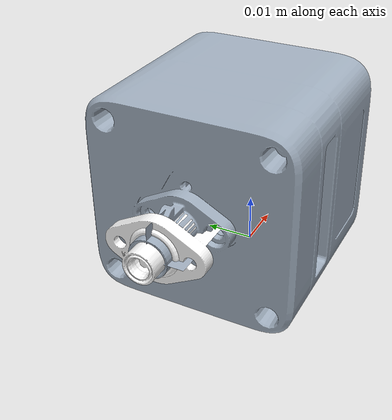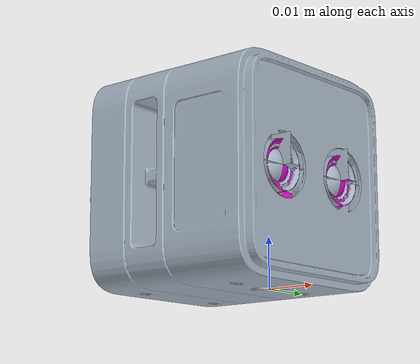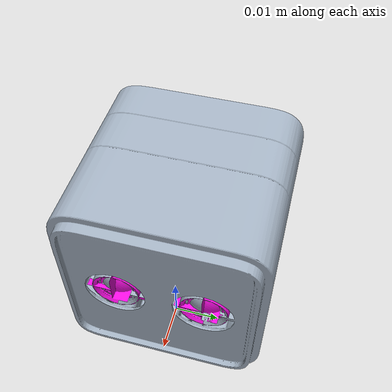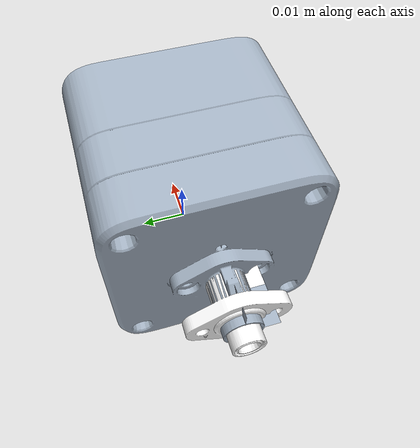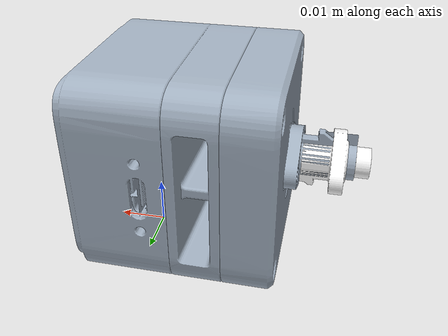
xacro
<?xml version="1.0" encoding="utf-8"?>
<robot xmlns:xacro="http://ros.org/wiki/xacro" name="gemini_305_g">
  <xacro:property name="mesh_path" value="package://orbbec_camera/meshes/gemini305_g/" />
  <link
    name="camera_link" />
  <joint
    name="camera_link"
    type="fixed">
    <origin
      xyz="0.008050000000001 0.00900395097915 0.0209939609855011"
      rpy="0 0 0" />
    <parent
      link="camera_bottom_screw" />
    <child
      link="camera_link" />
    <axis
      xyz="0 0 0" />
  </joint>
  <link
    name="camera_left_color_optical_frame" />
  <joint
    name="camera_left_color_optical_frame"
    type="fixed">
    <origin
      xyz="0 0 0"
      rpy="-1.5707963267949 0 -1.5707963267949" />
    <parent
      link="camera_left_color_frame" />
    <child
      link="camera_left_color_optical_frame" />
    <axis
      xyz="0 0 0" />
  </joint>
  <link
    name="camera_right_color_optical_frame" />
  <joint
    name="camera_right_color_optical_frame"
    type="fixed">
    <origin
      xyz="0 0 0"
      rpy="-1.5707963267949 0 -1.5707963267949" />
    <parent
      link="camera_right_color_frame" />
    <child
      link="camera_right_color_optical_frame" />
    <axis
      xyz="0 0 0" />
  </joint>
  <link
    name="camera_bottom_screw">
    <inertial>
      <origin
        xyz="9.11600953309166E-05 -0.00320635295652284 -0.020524426961246"
        rpy="0 0 0" />
      <mass
        value="0.0214423582709099" />
      <inertia
        ixx="4.83339010606525E-06"
        ixy="-3.72329051071151E-09"
        ixz="2.51447927275988E-08"
        iyy="8.20575253145867E-06"
        iyz="1.19581716252661E-08"
        izz="4.32451827833792E-06" />
    </inertial>
    <visual>
      <origin
        xyz="0 0 0"
        rpy="3.141592653589793 0 1.570796326794897" />
      <geometry>
        <mesh
          filename="${mesh_path}base_link.STL" />
      </geometry>
      <material
        name="">
        <color
          rgba="0.631372549019608 0.686274509803922 0.749019607843137 1" />
      </material>
    </visual>
    <collision>
      <origin
        xyz="0 0 0"
        rpy="3.141592653589793 0 1.570796326794897" />
      <geometry>
        <mesh
          filename="${mesh_path}base_link.STL" />
      </geometry>
    </collision>
    <visual>
      <origin
        xyz="-0.033409999999996 0 0.020993960985498"
        rpy="0 0 1.570796326794897" />
      <geometry>
        <mesh
          filename="${mesh_path}FAKRA.STL" />
      </geometry>
      <material
        name="">
        <color
          rgba="1 1 1 1" />
      </material>
    </visual>
    <collision>
      <origin
        xyz="-0.033409999999996 0 0.020993960985498"
        rpy="0 0 1.570796326794897" />
      <geometry>
        <mesh
          filename="${mesh_path}FAKRA.STL" />
      </geometry>
    </collision>
  </link>
  <link
    name="camera_right_color_frame">
    <inertial>
      <origin
        xyz="-1.1760228169691E-06 -0.0034693462830589 0.000376234001467315"
        rpy="0 0 0" />
      <mass
        value="0.000735468334566907" />
      <inertia
        ixx="7.92202560415907E-09"
        ixy="-1.95146774675994E-12"
        ixz="-9.3353249049419E-12"
        iyy="9.93176003014812E-09"
        iyz="-6.12381828511411E-12"
        izz="8.02751620920214E-09" />
    </inertial>
    <visual>
      <origin
        xyz="0 0 0"
        rpy="3.141592653589793 0 1.570796326794897" />
      <geometry>
        <mesh
          filename="${mesh_path}RGB_R.STL" />
      </geometry>
      <material
        name="">
        <color
          rgba="0.956862745098039 0.0470588235294118 0.874509803921569 1" />
      </material>
    </visual>
    <collision>
      <origin
        xyz="0 0 0"
        rpy="3.141592653589793 0 1.570796326794897" />
      <geometry>
        <mesh
          filename="${mesh_path}RGB_R.STL" />
      </geometry>
    </collision>
  </link>
  <joint
    name="camera_right_color_frame"
    type="fixed">
    <origin
      xyz="0 -0.018 0"
      rpy="0 0 0" />
    <parent
      link="camera_left_color_frame" />
    <child
      link="camera_right_color_frame" />
    <axis
      xyz="0 0 0" />
  </joint>
  <link
    name="camera_left_color_frame">
    <inertial>
      <origin
        xyz="-1.17602281778789E-06 -0.00346934628305837 0.000376234001468578"
        rpy="0 0 0" />
      <mass
        value="0.000735468334566977" />
      <inertia
        ixx="7.92202562203234E-09"
        ixy="-1.95146773316258E-12"
        ixz="-9.33532489896877E-12"
        iyy="9.9317599983348E-09"
        iyz="-6.12381825718017E-12"
        izz="8.0275161952487E-09" />
    </inertial>
    <visual>
      <origin
        xyz="0 0 0"
        rpy="3.141592653589793 0 1.570796326794897" />
      <geometry>
        <mesh
          filename="${mesh_path}RGB_L.STL" />
      </geometry>
      <material
        name="">
        <color
          rgba="0.956862745098039 0.0470588235294118 0.874509803921569 1" />
      </material>
    </visual>
    <collision>
      <origin
        xyz="0 0 0"
        rpy="3.141592653589793 0 1.570796326794897" />
      <geometry>
        <mesh
          filename="${mesh_path}RGB_L.STL" />
      </geometry>
    </collision>
  </link>
  <joint
    name="camera_left_color_frame"
    type="fixed">
    <origin
      xyz="0 0 0"
      rpy="0 0 0" />
    <parent
      link="camera_link" />
    <child
      link="camera_left_color_frame" />
    <axis
      xyz="0 0 0" />
  </joint>
</robot>
